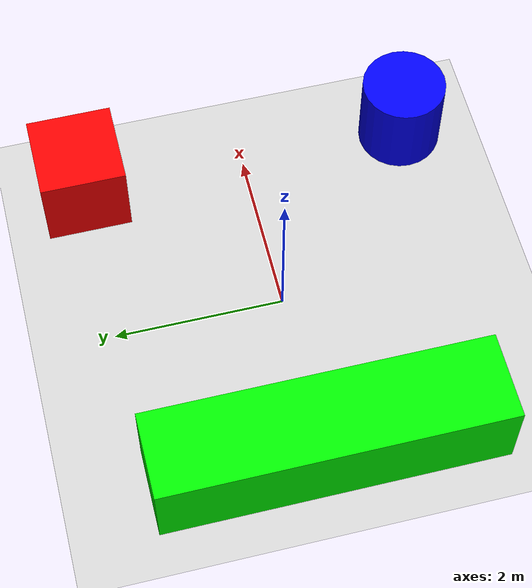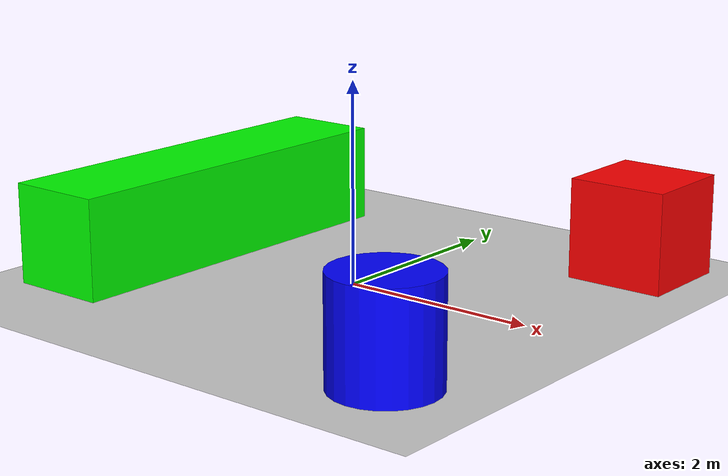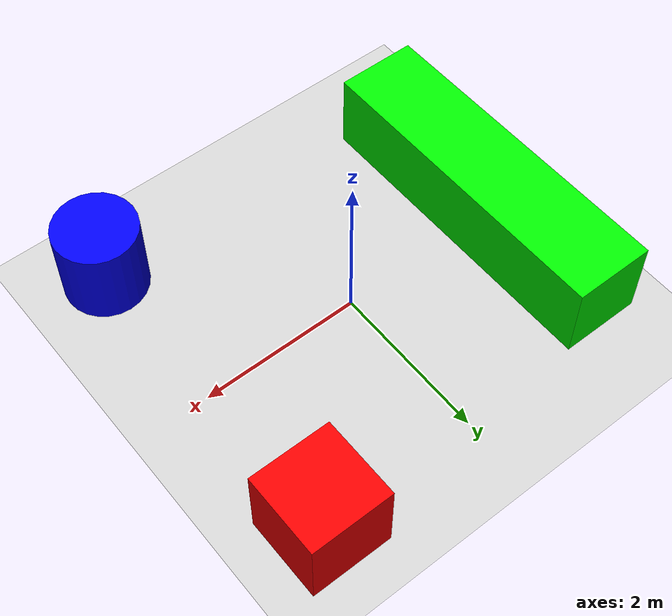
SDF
<?xml version="1.0" ?>
<sdf version="1.7">
  <world name="obstacle_world">
    <physics name="1ms" type="ignored">
      <max_step_size>0.001</max_step_size>
      <real_time_factor>1.0</real_time_factor>
    </physics>
    <plugin filename="libignition-gazebo-physics-system.so" name="ignition::gazebo::systems::Physics"/>
    <plugin filename="libignition-gazebo-user-commands-system.so" name="ignition::gazebo::systems::UserCommands"/>
    <plugin filename="libignition-gazebo-scene-broadcaster-system.so" name="ignition::gazebo::systems::SceneBroadcaster"/>

    <light type="directional" name="sun">
      <cast_shadows>true</cast_shadows>
      <pose>0 0 10 0 0 0</pose>
      <diffuse>0.8 0.8 0.8 1</diffuse>
      <specular>0.2 0.2 0.2 1</specular>
      <direction>-0.5 0.1 -0.9</direction>
    </light>
    <model name="ground_plane">
      <static>true</static>
      <link name="link">
        <collision name="collision"><geometry><plane><normal>0 0 1</normal><size>100 100</size></plane></geometry></collision>
        <visual name="visual"><geometry><plane><normal>0 0 1</normal><size>100 100</size></plane></geometry><material><ambient>0.8 0.8 0.8 1</ambient></material></visual>
      </link>
    </model>

    <model name='box1'>
        <pose>2 2 0.5 0 0 0</pose>
        <link name='link'>
            <collision name='collision'><geometry><box><size>1 1 1</size></box></geometry></collision>
            <visual name='visual'><geometry><box><size>1 1 1</size></box></geometry><material><diffuse>1 0 0 1</diffuse></material></visual>
        </link>
    </model>

    <model name='cylinder_right'>
        <pose>2 -2 0.5 0 0 0</pose>
        <link name='link'>
            <collision name='collision'><geometry><cylinder><radius>0.5</radius><length>1</length></cylinder></geometry></collision>
            <visual name='visual'><geometry><cylinder><radius>0.5</radius><length>1</length></cylinder></geometry><material><diffuse>0 0 1 1</diffuse></material></visual>
        </link>
    </model>

    <model name='wall_long'>
        <static>true</static>
        <pose>-2 0 0.5 0 0 0</pose>
        <link name='link'>
            <collision name='collision'><geometry><box><size>1 4 1</size></box></geometry></collision>
            <visual name='visual'><geometry><box><size>1 4 1</size></box></geometry><material><diffuse>0 1 0 1</diffuse></material></visual>
        </link>
    </model>
  </world>
</sdf>
